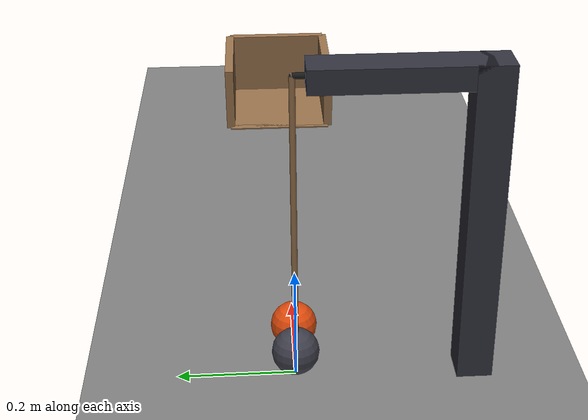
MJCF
<mujoco model="pendulum_strikes_ball_into_cup">
  <compiler angle="radian"/>
  <option timestep="0.002"/>
  <worldbody>
    <geom name="floor" type="plane" size="6 6 0.1" friction="0.8 0.001 0.0002"/>
    <body name="pendulum" pos="0 0 0.545">
      <joint name="pendulum_hinge" type="hinge" pos="0 0 0" axis="0 1 0"/>
      <geom name="pendulum" type="sphere" pos="0 0 -0.5" size="0.04" mass="1" rgba="0.25 0.25 0.3 1"/>
      <geom name="pendulum rod" type="capsule" size="0.005" fromto="0 0 0 0 0 -0.46" mass="0.05" rgba="0.6 0.45 0.3 1"/>
    </body>
    <body name="crossbar">
      <geom name="crossbar" type="box" pos="0 -0.16 0.545" size="0.03 0.14 0.02" rgba="0.2 0.2 0.25 1"/>
    </body>
    <body name="stand post">
      <geom name="stand post" type="box" pos="0 -0.3 0.2825" size="0.03 0.03 0.2825" rgba="0.2 0.2 0.25 1"/>
    </body>
    <body name="axle">
      <geom name="axle" type="capsule" size="0.005" fromto="0 0 0.545 0 -0.02 0.545" contype="0" conaffinity="0" rgba="0.1 0.1 0.1 1"/>
    </body>
    <body name="ball" pos="0.083 0 0.04">
      <freejoint/>
      <geom name="ball" type="sphere" pos="0 0 0" size="0.04" mass="0.1" condim="6" friction="0.8 0.001 0.0002" rgba="0.9 0.3 0.05 1"/>
    </body>
    <body name="cup">
      <geom name="cup_base" type="box" pos="1.083 0 0.0015" size="0.12 0.12 0.0015" friction="0.8 0.01 0.005" solref="0.01 1" rgba="0.6 0.45 0.3 1"/>
      <geom name="cup_near_wall" type="box" pos="0.963 0 0.0015" size="0.01 0.12 0.0015" friction="0.8 0.01 0.005" solref="0.01 1" rgba="0.6 0.45 0.3 1"/>
      <geom name="cup_far_wall" type="box" pos="1.203 0 0.075" size="0.01 0.12 0.075" friction="0.8 0.01 0.005" solref="0.01 1" rgba="0.6 0.45 0.3 1"/>
      <geom name="cup_left_wall" type="box" pos="1.083 0.12 0.075" size="0.12 0.01 0.075" friction="0.8 0.01 0.005" solref="0.01 1" rgba="0.6 0.45 0.3 1"/>
      <geom name="cup_right_wall" type="box" pos="1.083 -0.12 0.075" size="0.12 0.01 0.075" friction="0.8 0.01 0.005" solref="0.01 1" rgba="0.6 0.45 0.3 1"/>
    </body>
  </worldbody>
  <keyframe>
    <key name="start" qpos="0.610865 0.083 0 0.04 1 0 0 0" qvel="0 0 0 0 0 0 0"/>
  </keyframe>
</mujoco>
